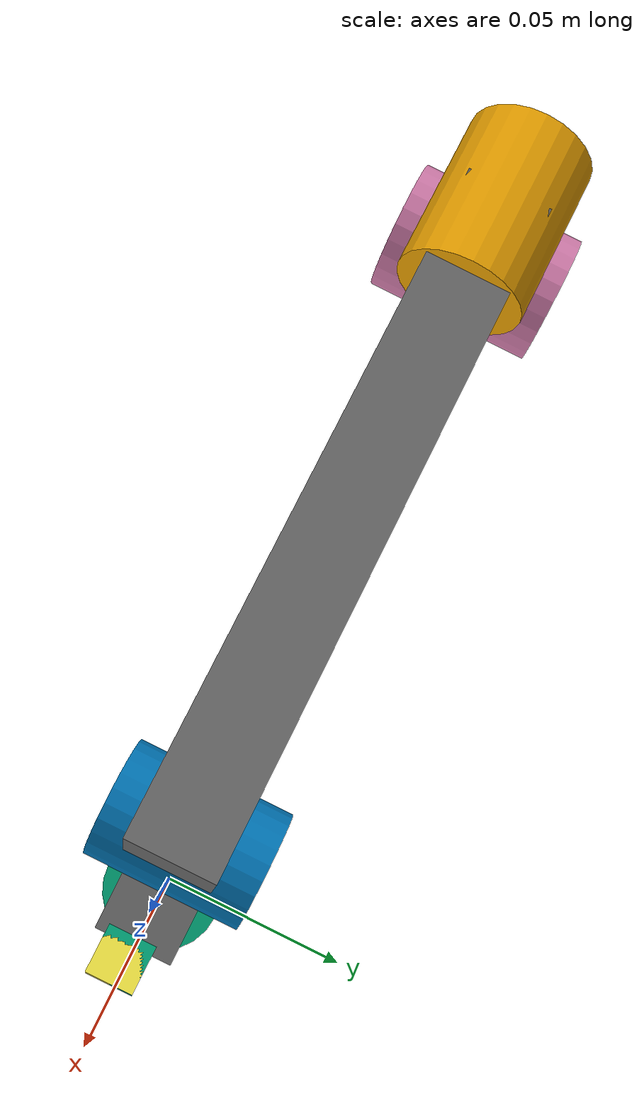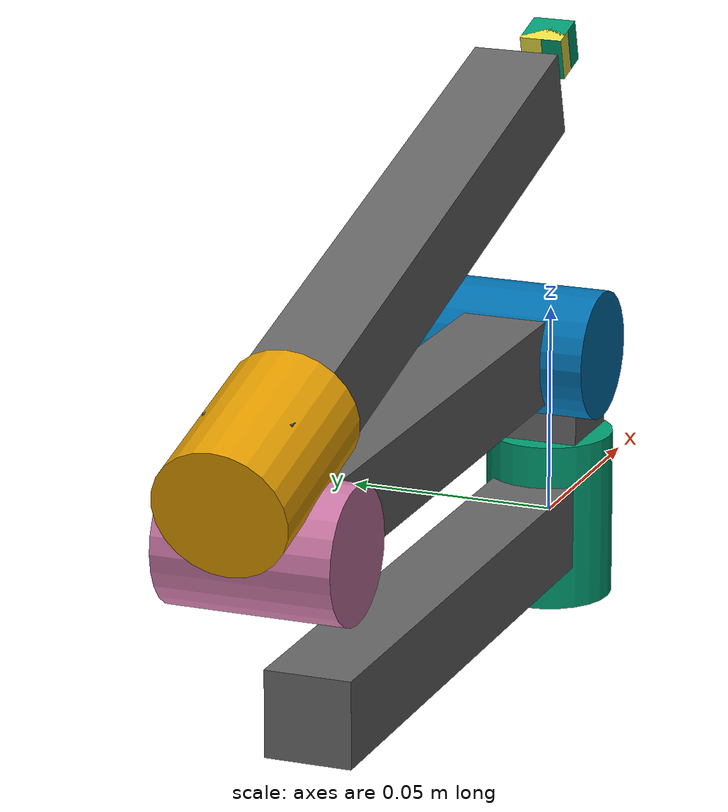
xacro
<?xml version="1.0"?>
<robot xmlns:xacro="http://www.ros.org/wiki/xacro" name="robot_arm">

    <link name="base_link"></link>

    <!-- Include the Modular Xacro Files -->
    <xacro:include filename="include.xacro"/>
    <xacro:include filename="link0.xacro"/>
    <xacro:include filename="link1.xacro"/>
    <xacro:include filename="link2.xacro"/>
    <xacro:include filename="link3.xacro"/>
    <xacro:include filename="link4.xacro"/>
    <xacro:include filename="link5.xacro"/>

    <xacro:link0 parent="base_link"/>
    <xacro:link1 parent="link0"/>
    <xacro:link2 parent="link1"/>
    <xacro:link3 parent="link2"/>
    <xacro:link4 parent="link3"/>
    <xacro:link5 parent="link4"/>

</robot>

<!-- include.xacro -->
<robot xmlns:xacro="http://www.ros.org/wiki/xacro">

<material name="grey">
    <color rgba="0.4 0.4 0.4 1"/>
</material>

</robot>

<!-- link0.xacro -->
<robot xmlns:xacro="http://www.ros.org/wiki/xacro">
  <xacro:macro name="link0" params="parent">

    <link name="body0">
      <visual>
        <origin xyz="-0.075 0 0" rpy="0 0 0" />
        <geometry>
          <box size="0.15 0.02 0.02"/>
        </geometry>
        <material name="grey"/>
      </visual>
      <inertial>
        <mass value="0.341"/>
        <origin xyz="-0.075 -0.006 -0.003"/>
        <inertia ixx="0.000099" ixy="0.000139" ixz="0.000115" iyy="0.002920" iyz="0.000003" izz="0.002934"/>
      </inertial>
    </link>

    <joint name="base_link_to_body0" type="fixed">
      <origin xyz="0 0 0" rpy="0 0 0"/>
      <parent link="${parent}"/>
      <child link="body0"/>
    </joint>

    <link name="link0">
      <visual>
        <geometry>
          <cylinder radius="0.015" length="0.04"/>
        </geometry>
      </visual>
    </link>

    <joint name="joint1" type="revolute">
      <axis xyz="0 0 1"/>
      <dynamics damping="1.0" friction="1.0"/>
      <limit effort="100" lower="-3.1416" upper="3.1416" velocity="0.5"/>
      <origin xyz="0 0 0" rpy="0 0 0"/>
      <parent link="${parent}"/>
      <child link="link0"/>
    </joint>

    <transmission name="joint1_transmission">
      <type>transmission_interface/SimpleTransmission</type>
      <joint name="joint1">
        <hardwareInterface>hardware_interface/PositionJointInterface</hardwareInterface>
      </joint>
    </transmission>

  </xacro:macro>
</robot>

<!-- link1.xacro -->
<robot xmlns:xacro="http://www.ros.org/wiki/xacro">
  <xacro:macro name="link1" params="parent">

    <link name="body1">
      <visual>
        <origin xyz="0 0 0.02" rpy="0 0 0" />
        <geometry>
          <box size="0.02 0.02 0.05"/>
        </geometry>
        <material name="grey"/>
      </visual>
      <inertial>
        <mass value="0.194"/>
        <origin xyz="0.005 -0.001 0.016"/>
        <inertia ixx="0.000189" ixy="0.000005" ixz="0.000054" iyy="0.000213" iyz="0.000003" izz="0.000067"/>
      </inertial>
    </link>

    <joint name="link0_to_body1" type="fixed">
      <origin xyz="0 0 0" rpy="0 0 0"/>
      <parent link="${parent}"/>
      <child link="body1"/>
    </joint>

    <link name="link1">
      <visual>
        <geometry>
          <cylinder radius="0.015" length="0.04"/>
        </geometry>
      </visual>
    </link>

    <joint name="joint2" type="revolute">
      <axis xyz="0 0 1"/>
      <dynamics damping="1.0" friction="1.0"/>
      <limit effort="100" lower="-3.1416" upper="3.1416" velocity="0.5"/>
      <origin xyz="-0.02 0 0.0462" rpy="1.5707 0 3.1415"/>
      <parent link="${parent}"/>
      <child link="link1"/>
    </joint>

    <transmission name="joint2_transmission">
      <type>transmission_interface/SimpleTransmission</type>
      <joint name="joint2">
        <hardwareInterface>hardware_interface/PositionJointInterface</hardwareInterface>
      </joint>
    </transmission>

  </xacro:macro>
</robot>

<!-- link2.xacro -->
<robot xmlns:xacro="http://www.ros.org/wiki/xacro">
  <xacro:macro name="link2" params="parent">

    <link name="body2">
      <visual>
        <origin xyz="0.075 0 0" rpy="0 0 0" />
        <geometry>
          <box size="0.15 0.02 0.02"/>
        </geometry>
        <material name="grey"/>
      </visual>
      <inertial>
        <mass value="0.429"/>
        <origin xyz="0.073 0 0"/>
        <inertia ixx="0.000087" ixy="-0.000076" ixz="-0.000010" iyy="0.003190" iyz="0" izz="0.003213"/>
      </inertial>
    </link>

    <joint name="link1_to_body2" type="fixed">
      <origin xyz="0 0 0" rpy="0 0 0"/>
      <parent link="${parent}"/>
      <child link="body2"/>
    </joint>

    <link name="link2">
      <visual>
        <geometry>
          <cylinder radius="0.015" length="0.04"/>
        </geometry>
      </visual>
    </link>

    <joint name="joint3" type="revolute">
      <axis xyz="0 0 1"/>
      <dynamics damping="1.0" friction="1.0"/>
      <limit effort="100" lower="-3.1416" upper="3.1416" velocity="0.5"/>
      <origin xyz="0.15071 0 0" rpy="3.1415 0 0"/>
      <parent link="${parent}"/>
      <child link="link2"/>
    </joint>

    <transmission name="joint3_transmission">
      <type>transmission_interface/SimpleTransmission</type>
      <joint name="joint3">
        <hardwareInterface>hardware_interface/PositionJointInterface</hardwareInterface>
      </joint>
    </transmission>

  </xacro:macro>
</robot>

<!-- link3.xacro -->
<robot xmlns:xacro="http://www.ros.org/wiki/xacro">
  <xacro:macro name="link3" params="parent">

    <link name="body3">
      <visual>
        <origin xyz="0 -0.02 0" rpy="0 0 0" />
        <geometry>
          <box size="0.02 0.02 0.02"/>
        </geometry>
        <material name="grey"/>
      </visual>
      <inertial>
        <mass value="0.115"/>
        <origin xyz="0.017 -0.026 -0.002"/>
        <inertia ixx="0.000120" ixy="-0.000061" ixz="-0.000001" iyy="0.000062" iyz="0" izz="0.000156"/>
      </inertial>
    </link>

    <joint name="link2_to_body3" type="fixed">
      <origin xyz="0 0 0" rpy="0 0 0"/>
      <parent link="${parent}"/>
      <child link="body3"/>
    </joint>

    <link name="link3">
      <visual>
        <geometry>
          <cylinder radius="0.015" length="0.04"/>
        </geometry>
      </visual>
    </link>

    <joint name="joint4" type="revolute">
      <axis xyz="0 0 1"/>
      <dynamics damping="1.0" friction="1.0"/>
      <limit effort="100" lower="-3.1416" upper="3.1416" velocity="0.5"/>
      <origin xyz="0.00531 -0.01928 0" rpy=" -1.5707 0 -1.3021"/>
      <parent link="${parent}"/>
      <child link="link3"/>
    </joint>

    <transmission name="joint4_transmission">
      <type>transmission_interface/SimpleTransmission</type>
      <joint name="joint4">
        <hardwareInterface>hardware_interface/PositionJointInterface</hardwareInterface>
      </joint>
    </transmission>

  </xacro:macro>
</robot>

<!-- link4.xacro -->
<robot xmlns:xacro="http://www.ros.org/wiki/xacro">
  <xacro:macro name="link4" params="parent">

    <link name="body4">
      <visual>
        <origin xyz="0 0 -0.08" rpy="0 0 0" />
        <geometry>
          <box size="0.02 0.02 0.16"/>
        </geometry>
        <material name="grey"/>
      </visual>
      <inertial>
        <mass value="0.333"/>
        <origin xyz="0 0.003 -0.098"/>
        <inertia ixx="0.003709" ixy="0.000002" ixz="-0.000004" iyy="0.003734" iyz="0" izz="0.000079"/>
      </inertial>
    </link>

    <joint name="link3_to_body4" type="fixed">
      <origin xyz="0 0 0" rpy="0 0 0"/>
      <parent link="${parent}"/>
      <child link="body4"/>
    </joint>

    <link name="link4">
      <visual>
        <geometry>
          <box size="0.01 0.01 0.01"/>
        </geometry>
      </visual>
    </link>

    <joint name="link3_to_link4" type="fixed">
      <origin xyz="0 0 -0.18" rpy=" 1.5707 0 1.5707"/>
      <parent link="${parent}"/>
      <child link="link4"/>
    </joint>

  </xacro:macro>
</robot>

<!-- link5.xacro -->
<robot xmlns:xacro="http://www.ros.org/wiki/xacro">
  <xacro:macro name="link5" params="parent">

    <link name="link5">
      <visual>
        <geometry>
          <box size="0.01 0.01 0.01"/>
        </geometry>
      </visual>
    </link>

    <joint name="link4_to_link5" type="fixed">
      <origin xyz="0 0 0" rpy="0 0 -1.5707"/>
      <parent link="${parent}"/>
      <child link="link5"/>
    </joint>

  </xacro:macro>
</robot>
